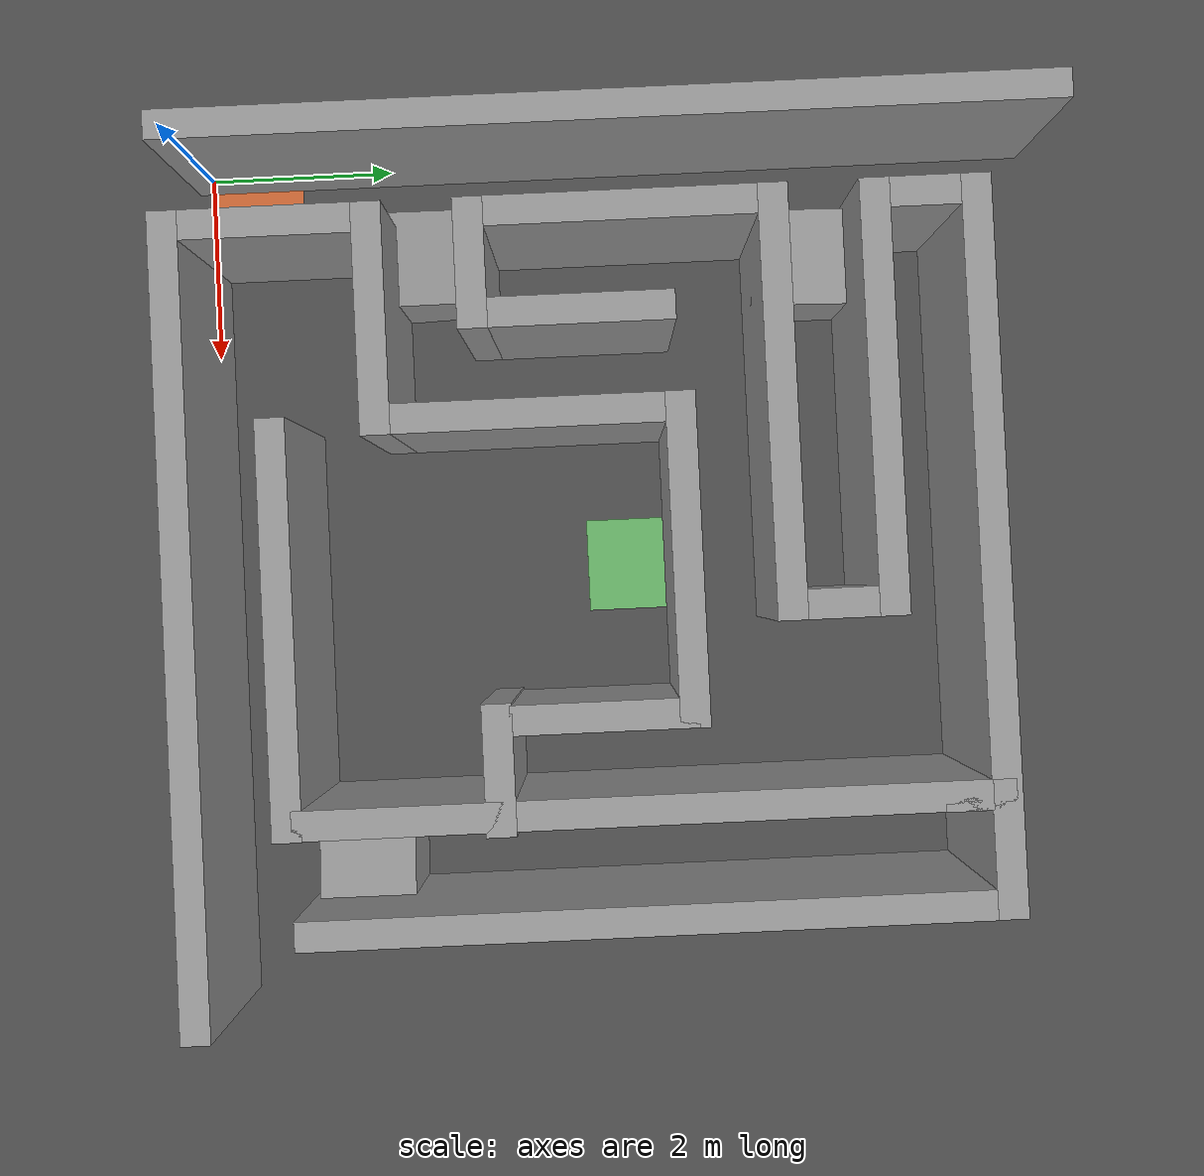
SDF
<sdf version="1.6">
 <world name="default">
  <light name="sun" type="directional">
   <pose>0 0 10 0 -0 0</pose>
   <diffuse>0.8 0.8 0.8 1</diffuse>
   <specular>0.1 0.1 0.1 1</specular>
   <attenuation>
    <range>1000</range>
    <constant>0.9</constant>
    <linear>0.01</linear>
    <quadratic>0.001</quadratic>
   </attenuation>
   <direction>-0.5 0.5 -1</direction>
  </light>
  <model name="ground_plane">
   <static>1</static>
   <link name="link">
    <collision name="collision">
     <geometry><plane><normal>0 0 1</normal><size>20 20</size></plane></geometry>
     <surface><friction><ode><mu>100</mu><mu2>50</mu2></ode></friction></surface>
    </collision>
    <visual name="visual">
     <cast_shadows>0</cast_shadows>
     <geometry><plane><normal>0 0 1</normal><size>20 20</size></plane></geometry>
     <material>
      <script>
       <uri>model://asphalt_plane/materials/scripts</uri>
       <uri>model://asphalt_plane/materials/textures</uri>
       <name>vrc/asphalt</name>
      </script>
     </material>
    </visual>
   </link>
  </model>
  <gravity>0 0 -9.8</gravity>
  <magnetic_field>6e-06 2.3e-05 -4.2e-05</magnetic_field>
  <atmosphere type="adiabatic"/>
  <physics name="default_physics" default="0" type="ode">
   <max_step_size>0.001</max_step_size>
   <real_time_factor>1</real_time_factor>
   <real_time_update_rate>1000</real_time_update_rate>
  </physics>
  <scene><ambient>0.4 0.4 0.4 1</ambient><background>0.7 0.7 0.7 1</background><shadows>1</shadows></scene>
  <spherical_coordinates>
   <surface_model>EARTH_WGS84</surface_model>
   <latitude_deg>0</latitude_deg>
   <longitude_deg>0</longitude_deg>
   <elevation>0</elevation>
   <heading_deg>0</heading_deg>
  </spherical_coordinates>
  <model name="box_goal">
   <static>1</static>
   <link name="link">
    <inertial>
     <mass>1</mass>
     <inertia>
      <ixx>0.166667</ixx>
      <ixy>0</ixy>
      <ixz>0</ixz>
      <iyy>0.166667</iyy>
      <iyz>0</iyz>
      <izz>0.166667</izz>
     </inertia>
    </inertial>
    <visual name="visual">
     <geometry><box><size>1 1 0.1</size></box></geometry>
     <material>
      <script><name>Gazebo/Grey</name><uri>file://media/materials/scripts/gazebo.material</uri></script>
      <ambient>0.3 1 0.3 1</ambient>
      <diffuse>0.4 0.7 0.4 1</diffuse>
      <specular>0.01 0.05 0.01 1</specular>
      <emissive>0 0.02 0 1</emissive>
      <shader type="vertex"><normal_map>__default__</normal_map></shader>
     </material>
    </visual>
    <collision name="collision">
     <geometry><box><size>1 1 0.1</size></box></geometry>
     <surface>
      <friction>
       <ode><mu>1</mu><mu2>1</mu2><fdir1>0 0 0</fdir1><slip1>0</slip1><slip2>0</slip2></ode>
       <torsional>
        <coefficient>1</coefficient>
        <patch_radius>0</patch_radius>
        <surface_radius>0</surface_radius>
        <use_patch_radius>1</use_patch_radius>
        <ode><slip>0</slip></ode>
       </torsional>
      </friction>
      <bounce><restitution_coefficient>0</restitution_coefficient><threshold>1e+06</threshold></bounce>
      <contact>
       <collide_without_contact>0</collide_without_contact>
       <collide_without_contact_bitmask>1</collide_without_contact_bitmask>
       <collide_bitmask>1</collide_bitmask>
       <ode>
        <soft_cfm>0</soft_cfm>
        <soft_erp>0.2</soft_erp>
        <kp>1e+13</kp>
        <kd>1</kd>
        <max_vel>0.01</max_vel>
        <min_depth>0</min_depth>
       </ode>
       <bullet>
        <split_impulse>1</split_impulse>
        <split_impulse_penetration_threshold>-0.01</split_impulse_penetration_threshold>
        <soft_cfm>0</soft_cfm>
        <soft_erp>0.2</soft_erp>
        <kp>1e+13</kp>
        <kd>1</kd>
       </bullet>
      </contact>
     </surface>
    </collision>
   </link>
   <static>0</static>
   <pose>4.5 4.5 -0.042 0 -0 0</pose>
  </model>
  <model name="box_init">
   <static>1</static>
   <link name="link">
    <inertial>
     <mass>1</mass>
     <inertia>
      <ixx>0.166667</ixx>
      <ixy>0</ixy>
      <ixz>0</ixz>
      <iyy>0.166667</iyy>
      <iyz>0</iyz>
      <izz>0.166667</izz>
     </inertia>
    </inertial>
    <visual name="visual">
     <geometry><box><size>1 1 0.1</size></box></geometry>
     <material>
      <script><name>Gazebo/Grey</name><uri>file://media/materials/scripts/gazebo.material</uri></script>
      <ambient>1 0.5 0.2 1</ambient>
      <diffuse>0.8 0.4 0.2 1</diffuse>
      <specular>0.05 0.02 0.01 1</specular>
      <emissive>0 0 0 1</emissive>
      <shader type="vertex"><normal_map>__default__</normal_map></shader>
     </material>
    </visual>
    <collision name="collision">
     <geometry><box><size>1 1 0.1</size></box></geometry>
     <surface>
      <friction>
       <ode><mu>1</mu><mu2>1</mu2><fdir1>0 0 0</fdir1><slip1>0</slip1><slip2>0</slip2></ode>
       <torsional>
        <coefficient>1</coefficient>
        <patch_radius>0</patch_radius>
        <surface_radius>0</surface_radius>
        <use_patch_radius>1</use_patch_radius>
        <ode><slip>0</slip></ode>
       </torsional>
      </friction>
      <bounce><restitution_coefficient>0</restitution_coefficient><threshold>1e+06</threshold></bounce>
      <contact>
       <collide_without_contact>0</collide_without_contact>
       <collide_without_contact_bitmask>1</collide_without_contact_bitmask>
       <collide_bitmask>1</collide_bitmask>
       <ode>
        <soft_cfm>0</soft_cfm>
        <soft_erp>0.2</soft_erp>
        <kp>1e+13</kp>
        <kd>1</kd>
        <max_vel>0.01</max_vel>
        <min_depth>0</min_depth>
       </ode>
       <bullet>
        <split_impulse>1</split_impulse>
        <split_impulse_penetration_threshold>-0.01</split_impulse_penetration_threshold>
        <soft_cfm>0</soft_cfm>
        <soft_erp>0.2</soft_erp>
        <kp>1e+13</kp>
        <kd>1</kd>
       </bullet>
      </contact>
     </surface>
    </collision>
   </link>
   <static>0</static>
   <allow_auto_disable>0</allow_auto_disable>
   <pose>0.5 0.5 -0.042 0 -0 0</pose>
  </model>
  <model name="greywall_9L4W">
   <link name="link">
    <pose>0 4.425 1 0 -0 1.57</pose>
    <inertial>
     <mass>20</mass>
     <inertia><ixx>1</ixx><ixy>0</ixy><ixz>0</ixz><iyy>1</iyy><iyz>0</iyz><izz>1</izz></inertia>
    </inertial>
    <visual name="ModelPreview_1::link::visual_1">
     <geometry><box><size>9.15 0.3 2</size></box></geometry>
     <material>
      <script>
       <uri>model://grey_wall/materials/scripts</uri>
       <uri>model://grey_wall/materials/textures</uri>
       <name>vrc/grey_wall</name>
      </script>
      <ambient>1 1 1 1</ambient>
      <diffuse>1 1 1 1</diffuse>
      <specular>0 0 0 1</specular>
      <emissive>0 0 0 1</emissive>
      <shader type="vertex"><normal_map>__default__</normal_map></shader>
     </material>
    </visual>
    <collision name="collision">
     <geometry><box><size>9.15 0.3 2</size></box></geometry>
     <surface>
      <friction>
       <ode><mu>1</mu><mu2>1</mu2><fdir1>0 0 0</fdir1><slip1>0</slip1><slip2>0</slip2></ode>
       <torsional>
        <coefficient>1</coefficient>
        <patch_radius>0</patch_radius>
        <surface_radius>0</surface_radius>
        <use_patch_radius>1</use_patch_radius>
        <ode><slip>0</slip></ode>
       </torsional>
      </friction>
      <bounce><restitution_coefficient>0</restitution_coefficient><threshold>1e+06</threshold></bounce>
      <contact>
       <collide_without_contact>0</collide_without_contact>
       <collide_without_contact_bitmask>1</collide_without_contact_bitmask>
       <collide_bitmask>1</collide_bitmask>
       <ode>
        <soft_cfm>0</soft_cfm>
        <soft_erp>0.2</soft_erp>
        <kp>1e+13</kp>
        <kd>1</kd>
        <max_vel>0.01</max_vel>
        <min_depth>0</min_depth>
       </ode>
       <bullet>
        <split_impulse>1</split_impulse>
        <split_impulse_penetration_threshold>-0.01</split_impulse_penetration_threshold>
        <soft_cfm>0</soft_cfm>
        <soft_erp>0.2</soft_erp>
        <kp>1e+13</kp>
        <kd>1</kd>
       </bullet>
      </contact>
     </surface>
    </collision>
   </link>
   <static>1</static>
  </model>
  <model name="greywall_8L36S">
   <link name="link">
    <pose>4.925 0 1 0 -0 0</pose>
    <inertial>
     <mass>20</mass>
     <inertia><ixx>1</ixx><ixy>0</ixy><ixz>0</ixz><iyy>1</iyy><iyz>0</iyz><izz>1</izz></inertia>
    </inertial>
    <visual name="ModelPreview_1::link::visual_1">
     <geometry><box><size>8.15 0.3 2</size></box></geometry>
     <material>
      <script>
       <uri>model://grey_wall/materials/scripts</uri>
       <uri>model://grey_wall/materials/textures</uri>
       <name>vrc/grey_wall</name>
      </script>
      <ambient>1 1 1 1</ambient>
      <diffuse>1 1 1 1</diffuse>
      <specular>0 0 0 1</specular>
      <emissive>0 0 0 1</emissive>
      <shader type="vertex"><normal_map>__default__</normal_map></shader>
     </material>
    </visual>
    <collision name="collision">
     <geometry><box><size>8.15 0.3 2</size></box></geometry>
     <surface>
      <friction>
       <ode><mu>1</mu><mu2>1</mu2><fdir1>0 0 0</fdir1><slip1>0</slip1><slip2>0</slip2></ode>
       <torsional>
        <coefficient>1</coefficient>
        <patch_radius>0</patch_radius>
        <surface_radius>0</surface_radius>
        <use_patch_radius>1</use_patch_radius>
        <ode><slip>0</slip></ode>
       </torsional>
      </friction>
      <bounce><restitution_coefficient>0</restitution_coefficient><threshold>1e+06</threshold></bounce>
      <contact>
       <collide_without_contact>0</collide_without_contact>
       <collide_without_contact_bitmask>1</collide_without_contact_bitmask>
       <collide_bitmask>1</collide_bitmask>
       <ode>
        <soft_cfm>0</soft_cfm>
        <soft_erp>0.2</soft_erp>
        <kp>1e+13</kp>
        <kd>1</kd>
        <max_vel>0.01</max_vel>
        <min_depth>0</min_depth>
       </ode>
       <bullet>
        <split_impulse>1</split_impulse>
        <split_impulse_penetration_threshold>-0.01</split_impulse_penetration_threshold>
        <soft_cfm>0</soft_cfm>
        <soft_erp>0.2</soft_erp>
        <kp>1e+13</kp>
        <kd>1</kd>
       </bullet>
      </contact>
     </surface>
    </collision>
   </link>
   <static>1</static>
  </model>
  <model name="greywall_7L66W">
   <link name="link">
    <pose>7 3.575 1 0 -0 1.57</pose>
    <inertial>
     <mass>20</mass>
     <inertia><ixx>1</ixx><ixy>0</ixy><ixz>0</ixz><iyy>1</iyy><iyz>0</iyz><izz>1</izz></inertia>
    </inertial>
    <visual name="ModelPreview_1::link::visual_1">
     <geometry><box><size>6.85 0.3 2</size></box></geometry>
     <material>
      <script>
       <uri>model://grey_wall/materials/scripts</uri>
       <uri>model://grey_wall/materials/textures</uri>
       <name>vrc/grey_wall</name>
      </script>
      <ambient>1 1 1 1</ambient>
      <diffuse>1 1 1 1</diffuse>
      <specular>0 0 0 1</specular>
      <emissive>0 0 0 1</emissive>
      <shader type="vertex"><normal_map>__default__</normal_map></shader>
     </material>
    </visual>
    <collision name="collision">
     <geometry><box><size>6.85 0.3 2</size></box></geometry>
     <surface>
      <friction>
       <ode><mu>1</mu><mu2>1</mu2><fdir1>0 0 0</fdir1><slip1>0</slip1><slip2>0</slip2></ode>
       <torsional>
        <coefficient>1</coefficient>
        <patch_radius>0</patch_radius>
        <surface_radius>0</surface_radius>
        <use_patch_radius>1</use_patch_radius>
        <ode><slip>0</slip></ode>
       </torsional>
      </friction>
      <bounce><restitution_coefficient>0</restitution_coefficient><threshold>1e+06</threshold></bounce>
      <contact>
       <collide_without_contact>0</collide_without_contact>
       <collide_without_contact_bitmask>1</collide_without_contact_bitmask>
       <collide_bitmask>1</collide_bitmask>
       <ode>
        <soft_cfm>0</soft_cfm>
        <soft_erp>0.2</soft_erp>
        <kp>1e+13</kp>
        <kd>1</kd>
        <max_vel>0.01</max_vel>
        <min_depth>0</min_depth>
       </ode>
       <bullet>
        <split_impulse>1</split_impulse>
        <split_impulse_penetration_threshold>-0.01</split_impulse_penetration_threshold>
        <soft_cfm>0</soft_cfm>
        <soft_erp>0.2</soft_erp>
        <kp>1e+13</kp>
        <kd>1</kd>
       </bullet>
      </contact>
     </surface>
    </collision>
   </link>
   <static>1</static>
   <pose>-0.07235 0.8652 0 0 -0 0</pose>
  </model>
  <model name="greywall_7L76W">
   <link name="link">
    <pose>8 4.425 1 0 -0 1.57</pose>
    <inertial>
     <mass>20</mass>
     <inertia><ixx>1</ixx><ixy>0</ixy><ixz>0</ixz><iyy>1</iyy><iyz>0</iyz><izz>1</izz></inertia>
    </inertial>
    <visual name="ModelPreview_1::link::visual_1">
     <geometry><box><size>6.85 0.3 2</size></box></geometry>
     <material>
      <script>
       <uri>model://grey_wall/materials/scripts</uri>
       <uri>model://grey_wall/materials/textures</uri>
       <name>vrc/grey_wall</name>
      </script>
      <ambient>1 1 1 1</ambient>
      <diffuse>1 1 1 1</diffuse>
      <specular>0 0 0 1</specular>
      <emissive>0 0 0 1</emissive>
      <shader type="vertex"><normal_map>__default__</normal_map></shader>
     </material>
    </visual>
    <collision name="collision">
     <geometry><box><size>6.85 0.3 2</size></box></geometry>
     <surface>
      <friction>
       <ode><mu>1</mu><mu2>1</mu2><fdir1>0 0 0</fdir1><slip1>0</slip1><slip2>0</slip2></ode>
       <torsional>
        <coefficient>1</coefficient>
        <patch_radius>0</patch_radius>
        <surface_radius>0</surface_radius>
        <use_patch_radius>1</use_patch_radius>
        <ode><slip>0</slip></ode>
       </torsional>
      </friction>
      <bounce><restitution_coefficient>0</restitution_coefficient><threshold>1e+06</threshold></bounce>
      <contact>
       <collide_without_contact>0</collide_without_contact>
       <collide_without_contact_bitmask>1</collide_without_contact_bitmask>
       <collide_bitmask>1</collide_bitmask>
       <ode>
        <soft_cfm>0</soft_cfm>
        <soft_erp>0.2</soft_erp>
        <kp>1e+13</kp>
        <kd>1</kd>
        <max_vel>0.01</max_vel>
        <min_depth>0</min_depth>
       </ode>
       <bullet>
        <split_impulse>1</split_impulse>
        <split_impulse_penetration_threshold>-0.01</split_impulse_penetration_threshold>
        <soft_cfm>0</soft_cfm>
        <soft_erp>0.2</soft_erp>
        <kp>1e+13</kp>
        <kd>1</kd>
       </bullet>
      </contact>
     </surface>
    </collision>
   </link>
   <static>1</static>
  </model>
  <model name="greywall_7L43N">
   <link name="link">
    <pose>4.5 8 1 0 -0 0</pose>
    <inertial>
     <mass>20</mass>
     <inertia><ixx>1</ixx><ixy>0</ixy><ixz>0</ixz><iyy>1</iyy><iyz>0</iyz><izz>1</izz></inertia>
    </inertial>
    <visual name="ModelPreview_1::link::visual_1">
     <geometry><box><size>7.3 0.3 2</size></box></geometry>
     <material>
      <script>
       <uri>model://grey_wall/materials/scripts</uri>
       <uri>model://grey_wall/materials/textures</uri>
       <name>vrc/grey_wall</name>
      </script>
      <ambient>1 1 1 1</ambient>
      <diffuse>1 1 1 1</diffuse>
      <specular>0 0 0 1</specular>
      <emissive>0 0 0 1</emissive>
      <shader type="vertex"><normal_map>__default__</normal_map></shader>
     </material>
    </visual>
    <collision name="collision">
     <geometry><box><size>7.3 0.3 2</size></box></geometry>
     <surface>
      <friction>
       <ode><mu>1</mu><mu2>1</mu2><fdir1>0 0 0</fdir1><slip1>0</slip1><slip2>0</slip2></ode>
       <torsional>
        <coefficient>1</coefficient>
        <patch_radius>0</patch_radius>
        <surface_radius>0</surface_radius>
        <use_patch_radius>1</use_patch_radius>
        <ode><slip>0</slip></ode>
       </torsional>
      </friction>
      <bounce><restitution_coefficient>0</restitution_coefficient><threshold>1e+06</threshold></bounce>
      <contact>
       <collide_without_contact>0</collide_without_contact>
       <collide_without_contact_bitmask>1</collide_without_contact_bitmask>
       <collide_bitmask>1</collide_bitmask>
       <ode>
        <soft_cfm>0</soft_cfm>
        <soft_erp>0.2</soft_erp>
        <kp>1e+13</kp>
        <kd>1</kd>
        <max_vel>0.01</max_vel>
        <min_depth>0</min_depth>
       </ode>
       <bullet>
        <split_impulse>1</split_impulse>
        <split_impulse_penetration_threshold>-0.01</split_impulse_penetration_threshold>
        <soft_cfm>0</soft_cfm>
        <soft_erp>0.2</soft_erp>
        <kp>1e+13</kp>
        <kd>1</kd>
       </bullet>
      </contact>
     </surface>
    </collision>
   </link>
   <static>1</static>
  </model>
  <model name="greywall_1L16W">
   <link name="link">
    <pose>1 7.5 1 0 -0 1.57</pose>
    <inertial>
     <mass>20</mass>
     <inertia><ixx>1</ixx><ixy>0</ixy><ixz>0</ixz><iyy>1</iyy><iyz>0</iyz><izz>1</izz></inertia>
    </inertial>
    <visual name="ModelPreview_1::link::visual_1">
     <geometry><box><size>0.7 0.3 2</size></box></geometry>
     <material>
      <script>
       <uri>model://grey_wall/materials/scripts</uri>
       <uri>model://grey_wall/materials/textures</uri>
       <name>vrc/grey_wall</name>
      </script>
      <ambient>1 1 1 1</ambient>
      <diffuse>1 1 1 1</diffuse>
      <specular>0 0 0 1</specular>
      <emissive>0 0 0 1</emissive>
      <shader type="vertex"><normal_map>__default__</normal_map></shader>
     </material>
    </visual>
    <collision name="collision">
     <geometry><box><size>0.7 0.3 2</size></box></geometry>
     <surface>
      <friction>
       <ode><mu>1</mu><mu2>1</mu2><fdir1>0 0 0</fdir1><slip1>0</slip1><slip2>0</slip2></ode>
       <torsional>
        <coefficient>1</coefficient>
        <patch_radius>0</patch_radius>
        <surface_radius>0</surface_radius>
        <use_patch_radius>1</use_patch_radius>
        <ode><slip>0</slip></ode>
       </torsional>
      </friction>
      <bounce><restitution_coefficient>0</restitution_coefficient><threshold>1e+06</threshold></bounce>
      <contact>
       <collide_without_contact>0</collide_without_contact>
       <collide_without_contact_bitmask>1</collide_without_contact_bitmask>
       <collide_bitmask>1</collide_bitmask>
       <ode>
        <soft_cfm>0</soft_cfm>
        <soft_erp>0.2</soft_erp>
        <kp>1e+13</kp>
        <kd>1</kd>
        <max_vel>0.01</max_vel>
        <min_depth>0</min_depth>
       </ode>
       <bullet>
        <split_impulse>1</split_impulse>
        <split_impulse_penetration_threshold>-0.01</split_impulse_penetration_threshold>
        <soft_cfm>0</soft_cfm>
        <soft_erp>0.2</soft_erp>
        <kp>1e+13</kp>
        <kd>1</kd>
       </bullet>
      </contact>
     </surface>
    </collision>
   </link>
   <static>1</static>
  </model>
  <model name="greywall_1L51W">
   <link name="link">
    <pose>5 6.5 1 0 -0 1.57</pose>
    <inertial>
     <mass>20</mass>
     <inertia><ixx>1</ixx><ixy>0</ixy><ixz>0</ixz><iyy>1</iyy><iyz>0</iyz><izz>1</izz></inertia>
    </inertial>
    <visual name="ModelPreview_1::link::visual_1">
     <geometry><box><size>0.7 0.3 2</size></box></geometry>
     <material>
      <script>
       <uri>model://grey_wall/materials/scripts</uri>
       <uri>model://grey_wall/materials/textures</uri>
       <name>vrc/grey_wall</name>
      </script>
      <ambient>1 1 1 1</ambient>
      <diffuse>1 1 1 1</diffuse>
      <specular>0 0 0 1</specular>
      <emissive>0 0 0 1</emissive>
      <shader type="vertex"><normal_map>__default__</normal_map></shader>
     </material>
    </visual>
    <collision name="collision">
     <geometry><box><size>0.7 0.3 2</size></box></geometry>
     <surface>
      <friction>
       <ode><mu>1</mu><mu2>1</mu2><fdir1>0 0 0</fdir1><slip1>0</slip1><slip2>0</slip2></ode>
       <torsional>
        <coefficient>1</coefficient>
        <patch_radius>0</patch_radius>
        <surface_radius>0</surface_radius>
        <use_patch_radius>1</use_patch_radius>
        <ode><slip>0</slip></ode>
       </torsional>
      </friction>
      <bounce><restitution_coefficient>0</restitution_coefficient><threshold>1e+06</threshold></bounce>
      <contact>
       <collide_without_contact>0</collide_without_contact>
       <collide_without_contact_bitmask>1</collide_without_contact_bitmask>
       <collide_bitmask>1</collide_bitmask>
       <ode>
        <soft_cfm>0</soft_cfm>
        <soft_erp>0.2</soft_erp>
        <kp>1e+13</kp>
        <kd>1</kd>
        <max_vel>0.01</max_vel>
        <min_depth>0</min_depth>
       </ode>
       <bullet>
        <split_impulse>1</split_impulse>
        <split_impulse_penetration_threshold>-0.01</split_impulse_penetration_threshold>
        <soft_cfm>0</soft_cfm>
        <soft_erp>0.2</soft_erp>
        <kp>1e+13</kp>
        <kd>1</kd>
       </bullet>
      </contact>
     </surface>
    </collision>
   </link>
   <static>1</static>
  </model>
  <model name="greywall_1L12S">
   <link name="link">
    <pose>1.5 3 1 0 -0 0</pose>
    <inertial>
     <mass>20</mass>
     <inertia><ixx>1</ixx><ixy>0</ixy><ixz>0</ixz><iyy>1</iyy><iyz>0</iyz><izz>1</izz></inertia>
    </inertial>
    <visual name="ModelPreview_1::link::visual_1">
     <geometry><box><size>1.3 0.3 2</size></box></geometry>
     <material>
      <script>
       <uri>model://grey_wall/materials/scripts</uri>
       <uri>model://grey_wall/materials/textures</uri>
       <name>vrc/grey_wall</name>
      </script>
      <ambient>1 1 1 1</ambient>
      <diffuse>1 1 1 1</diffuse>
      <specular>0 0 0 1</specular>
      <emissive>0 0 0 1</emissive>
      <shader type="vertex"><normal_map>__default__</normal_map></shader>
     </material>
    </visual>
    <collision name="collision">
     <geometry><box><size>1.3 0.3 2</size></box></geometry>
     <surface>
      <friction>
       <ode><mu>1</mu><mu2>1</mu2><fdir1>0 0 0</fdir1><slip1>0</slip1><slip2>0</slip2></ode>
       <torsional>
        <coefficient>1</coefficient>
        <patch_radius>0</patch_radius>
        <surface_radius>0</surface_radius>
        <use_patch_radius>1</use_patch_radius>
        <ode><slip>0</slip></ode>
       </torsional>
      </friction>
      <bounce><restitution_coefficient>0</restitution_coefficient><threshold>1e+06</threshold></bounce>
      <contact>
       <collide_without_contact>0</collide_without_contact>
       <collide_without_contact_bitmask>1</collide_without_contact_bitmask>
       <collide_bitmask>1</collide_bitmask>
       <ode>
        <soft_cfm>0</soft_cfm>
        <soft_erp>0.2</soft_erp>
        <kp>1e+13</kp>
        <kd>1</kd>
        <max_vel>0.01</max_vel>
        <min_depth>0</min_depth>
       </ode>
       <bullet>
        <split_impulse>1</split_impulse>
        <split_impulse_penetration_threshold>-0.01</split_impulse_penetration_threshold>
        <soft_cfm>0</soft_cfm>
        <soft_erp>0.2</soft_erp>
        <kp>1e+13</kp>
        <kd>1</kd>
       </bullet>
      </contact>
     </surface>
    </collision>
   </link>
   <static>1</static>
  </model>
  <model name="greywall_2L9W">
   <link name="link">
    <pose>1 1 1 0 -0 1.57</pose>
    <inertial>
     <mass>20</mass>
     <inertia><ixx>1</ixx><ixy>0</ixy><ixz>0</ixz><iyy>1</iyy><iyz>0</iyz><izz>1</izz></inertia>
    </inertial>
    <visual name="ModelPreview_1::link::visual_1">
     <geometry><box><size>1.7 0.3 2</size></box></geometry>
     <material>
      <script>
       <uri>model://grey_wall/materials/scripts</uri>
       <uri>model://grey_wall/materials/textures</uri>
       <name>vrc/grey_wall</name>
      </script>
      <ambient>1 1 1 1</ambient>
      <diffuse>1 1 1 1</diffuse>
      <specular>0 0 0 1</specular>
      <emissive>0 0 0 1</emissive>
      <shader type="vertex"><normal_map>__default__</normal_map></shader>
     </material>
    </visual>
    <collision name="collision">
     <geometry><box><size>1.7 0.3 2</size></box></geometry>
     <surface>
      <friction>
       <ode><mu>1</mu><mu2>1</mu2><fdir1>0 0 0</fdir1><slip1>0</slip1><slip2>0</slip2></ode>
       <torsional>
        <coefficient>1</coefficient>
        <patch_radius>0</patch_radius>
        <surface_radius>0</surface_radius>
        <use_patch_radius>1</use_patch_radius>
        <ode><slip>0</slip></ode>
       </torsional>
      </friction>
      <bounce><restitution_coefficient>0</restitution_coefficient><threshold>1e+06</threshold></bounce>
      <contact>
       <collide_without_contact>0</collide_without_contact>
       <collide_without_contact_bitmask>1</collide_without_contact_bitmask>
       <collide_bitmask>1</collide_bitmask>
       <ode>
        <soft_cfm>0</soft_cfm>
        <soft_erp>0.2</soft_erp>
        <kp>1e+13</kp>
        <kd>1</kd>
        <max_vel>0.01</max_vel>
        <min_depth>0</min_depth>
       </ode>
       <bullet>
        <split_impulse>1</split_impulse>
        <split_impulse_penetration_threshold>-0.01</split_impulse_penetration_threshold>
        <soft_cfm>0</soft_cfm>
        <soft_erp>0.2</soft_erp>
        <kp>1e+13</kp>
        <kd>1</kd>
       </bullet>
      </contact>
     </surface>
    </collision>
   </link>
   <static>1</static>
  </model>
  <model name="greywall_4L34S">
   <link name="link">
    <pose>3 7 1 0 -0 0</pose>
    <inertial>
     <mass>20</mass>
     <inertia><ixx>1</ixx><ixy>0</ixy><ixz>0</ixz><iyy>1</iyy><iyz>0</iyz><izz>1</izz></inertia>
    </inertial>
    <visual name="ModelPreview_1::link::visual_1">
     <geometry><box><size>4.3 0.3 2</size></box></geometry>
     <material>
      <script>
       <uri>model://grey_wall/materials/scripts</uri>
       <uri>model://grey_wall/materials/textures</uri>
       <name>vrc/grey_wall</name>
      </script>
      <ambient>1 1 1 1</ambient>
      <diffuse>1 1 1 1</diffuse>
      <specular>0 0 0 1</specular>
      <emissive>0 0 0 1</emissive>
      <shader type="vertex"><normal_map>__default__</normal_map></shader>
     </material>
    </visual>
    <collision name="collision">
     <geometry><box><size>4.3 0.3 2</size></box></geometry>
     <surface>
      <friction>
       <ode><mu>1</mu><mu2>1</mu2><fdir1>0 0 0</fdir1><slip1>0</slip1><slip2>0</slip2></ode>
       <torsional>
        <coefficient>1</coefficient>
        <patch_radius>0</patch_radius>
        <surface_radius>0</surface_radius>
        <use_patch_radius>1</use_patch_radius>
        <ode><slip>0</slip></ode>
       </torsional>
      </friction>
      <bounce><restitution_coefficient>0</restitution_coefficient><threshold>1e+06</threshold></bounce>
      <contact>
       <collide_without_contact>0</collide_without_contact>
       <collide_without_contact_bitmask>1</collide_without_contact_bitmask>
       <collide_bitmask>1</collide_bitmask>
       <ode>
        <soft_cfm>0</soft_cfm>
        <soft_erp>0.2</soft_erp>
        <kp>1e+13</kp>
        <kd>1</kd>
        <max_vel>0.01</max_vel>
        <min_depth>0</min_depth>
       </ode>
       <bullet>
        <split_impulse>1</split_impulse>
        <split_impulse_penetration_threshold>-0.01</split_impulse_penetration_threshold>
        <soft_cfm>0</soft_cfm>
        <soft_erp>0.2</soft_erp>
        <kp>1e+13</kp>
        <kd>1</kd>
       </bullet>
      </contact>
     </surface>
    </collision>
   </link>
   <static>1</static>
  </model>
  <model name="greywall_4L33S">
   <link name="link">
    <pose>3 6 1 0 -0 0</pose>
    <inertial>
     <mass>20</mass>
     <inertia><ixx>1</ixx><ixy>0</ixy><ixz>0</ixz><iyy>1</iyy><iyz>0</iyz><izz>1</izz></inertia>
    </inertial>
    <visual name="ModelPreview_1::link::visual_1">
     <geometry><box><size>4.3 0.3 2</size></box></geometry>
     <material>
      <script>
       <uri>model://grey_wall/materials/scripts</uri>
       <uri>model://grey_wall/materials/textures</uri>
       <name>vrc/grey_wall</name>
      </script>
      <ambient>1 1 1 1</ambient>
      <diffuse>1 1 1 1</diffuse>
      <specular>0 0 0 1</specular>
      <emissive>0 0 0 1</emissive>
      <shader type="vertex"><normal_map>__default__</normal_map></shader>
     </material>
    </visual>
    <collision name="collision">
     <geometry><box><size>4.3 0.3 2</size></box></geometry>
     <surface>
      <friction>
       <ode><mu>1</mu><mu2>1</mu2><fdir1>0 0 0</fdir1><slip1>0</slip1><slip2>0</slip2></ode>
       <torsional>
        <coefficient>1</coefficient>
        <patch_radius>0</patch_radius>
        <surface_radius>0</surface_radius>
        <use_patch_radius>1</use_patch_radius>
        <ode><slip>0</slip></ode>
       </torsional>
      </friction>
      <bounce><restitution_coefficient>0</restitution_coefficient><threshold>1e+06</threshold></bounce>
      <contact>
       <collide_without_contact>0</collide_without_contact>
       <collide_without_contact_bitmask>1</collide_without_contact_bitmask>
       <collide_bitmask>1</collide_bitmask>
       <ode>
        <soft_cfm>0</soft_cfm>
        <soft_erp>0.2</soft_erp>
        <kp>1e+13</kp>
        <kd>1</kd>
        <max_vel>0.01</max_vel>
        <min_depth>0</min_depth>
       </ode>
       <bullet>
        <split_impulse>1</split_impulse>
        <split_impulse_penetration_threshold>-0.01</split_impulse_penetration_threshold>
        <soft_cfm>0</soft_cfm>
        <soft_erp>0.2</soft_erp>
        <kp>1e+13</kp>
        <kd>1</kd>
       </bullet>
      </contact>
     </surface>
    </collision>
   </link>
   <static>1</static>
  </model>
  <model name="greywall_2L12E">
   <link name="link">
    <pose>2 4.075 1 0 -0 1.57</pose>
    <inertial>
     <mass>20</mass>
     <inertia><ixx>1</ixx><ixy>0</ixy><ixz>0</ixz><iyy>1</iyy><iyz>0</iyz><izz>1</izz></inertia>
    </inertial>
    <visual name="ModelPreview_1::link::visual_1">
     <geometry><box><size>1.85 0.3 2</size></box></geometry>
     <material>
      <script>
       <uri>model://grey_wall/materials/scripts</uri>
       <uri>model://grey_wall/materials/textures</uri>
       <name>vrc/grey_wall</name>
      </script>
      <ambient>1 1 1 1</ambient>
      <diffuse>1 1 1 1</diffuse>
      <specular>0 0 0 1</specular>
      <emissive>0 0 0 1</emissive>
      <shader type="vertex"><normal_map>__default__</normal_map></shader>
     </material>
    </visual>
    <collision name="collision">
     <geometry><box><size>1.85 0.3 2</size></box></geometry>
     <surface>
      <friction>
       <ode><mu>1</mu><mu2>1</mu2><fdir1>0 0 0</fdir1><slip1>0</slip1><slip2>0</slip2></ode>
       <torsional>
        <coefficient>1</coefficient>
        <patch_radius>0</patch_radius>
        <surface_radius>0</surface_radius>
        <use_patch_radius>1</use_patch_radius>
        <ode><slip>0</slip></ode>
       </torsional>
      </friction>
      <bounce><restitution_coefficient>0</restitution_coefficient><threshold>1e+06</threshold></bounce>
      <contact>
       <collide_without_contact>0</collide_without_contact>
       <collide_without_contact_bitmask>1</collide_without_contact_bitmask>
       <collide_bitmask>1</collide_bitmask>
       <ode>
        <soft_cfm>0</soft_cfm>
        <soft_erp>0.2</soft_erp>
        <kp>1e+13</kp>
        <kd>1</kd>
        <max_vel>0.01</max_vel>
        <min_depth>0</min_depth>
       </ode>
       <bullet>
        <split_impulse>1</split_impulse>
        <split_impulse_penetration_threshold>-0.01</split_impulse_penetration_threshold>
        <soft_cfm>0</soft_cfm>
        <soft_erp>0.2</soft_erp>
        <kp>1e+13</kp>
        <kd>1</kd>
       </bullet>
      </contact>
     </surface>
    </collision>
   </link>
   <static>1</static>
  </model>
  <model name="greywall_3L12W">
   <link name="link">
    <pose>1 4.5 1 0 -0 1.57</pose>
    <inertial>
     <mass>20</mass>
     <inertia><ixx>1</ixx><ixy>0</ixy><ixz>0</ixz><iyy>1</iyy><iyz>0</iyz><izz>1</izz></inertia>
    </inertial>
    <visual name="ModelPreview_1::link::visual_1">
     <geometry><box><size>2.7 0.3 2</size></box></geometry>
     <material>
      <script>
       <uri>model://grey_wall/materials/scripts</uri>
       <uri>model://grey_wall/materials/textures</uri>
       <name>vrc/grey_wall</name>
      </script>
      <ambient>1 1 1 1</ambient>
      <diffuse>1 1 1 1</diffuse>
      <specular>0 0 0 1</specular>
      <emissive>0 0 0 1</emissive>
      <shader type="vertex"><normal_map>__default__</normal_map></shader>
     </material>
    </visual>
    <collision name="collision">
     <geometry><box><size>2.7 0.3 2</size></box></geometry>
     <surface>
      <friction>
       <ode><mu>1</mu><mu2>1</mu2><fdir1>0 0 0</fdir1><slip1>0</slip1><slip2>0</slip2></ode>
       <torsional>
        <coefficient>1</coefficient>
        <patch_radius>0</patch_radius>
        <surface_radius>0</surface_radius>
        <use_patch_radius>1</use_patch_radius>
        <ode><slip>0</slip></ode>
       </torsional>
      </friction>
      <bounce><restitution_coefficient>0</restitution_coefficient><threshold>1e+06</threshold></bounce>
      <contact>
       <collide_without_contact>0</collide_without_contact>
       <collide_without_contact_bitmask>1</collide_without_contact_bitmask>
       <collide_bitmask>1</collide_bitmask>
       <ode>
        <soft_cfm>0</soft_cfm>
        <soft_erp>0.2</soft_erp>
        <kp>1e+13</kp>
        <kd>1</kd>
        <max_vel>0.01</max_vel>
        <min_depth>0</min_depth>
       </ode>
       <bullet>
        <split_impulse>1</split_impulse>
        <split_impulse_penetration_threshold>-0.01</split_impulse_penetration_threshold>
        <soft_cfm>0</soft_cfm>
        <soft_erp>0.2</soft_erp>
        <kp>1e+13</kp>
        <kd>1</kd>
       </bullet>
      </contact>
     </surface>
    </collision>
   </link>
   <static>1</static>
  </model>
  <model name="greywall_2L10N">
   <link name="link">
    <pose>2 2 1 0 -0 0</pose>
    <inertial>
     <mass>20</mass>
     <inertia><ixx>1</ixx><ixy>0</ixy><ixz>0</ixz><iyy>1</iyy><iyz>0</iyz><izz>1</izz></inertia>
    </inertial>
    <visual name="ModelPreview_1::link::visual_1">
     <geometry><box><size>2.3 0.3 2</size></box></geometry>
     <material>
      <script>
       <uri>model://grey_wall/materials/scripts</uri>
       <uri>model://grey_wall/materials/textures</uri>
       <name>vrc/grey_wall</name>
      </script>
      <ambient>1 1 1 1</ambient>
      <diffuse>1 1 1 1</diffuse>
      <specular>0 0 0 1</specular>
      <emissive>0 0 0 1</emissive>
      <shader type="vertex"><normal_map>__default__</normal_map></shader>
     </material>
    </visual>
    <collision name="collision">
     <geometry><box><size>2.3 0.3 2</size></box></geometry>
     <surface>
      <friction>
       <ode><mu>1</mu><mu2>1</mu2><fdir1>0 0 0</fdir1><slip1>0</slip1><slip2>0</slip2></ode>
       <torsional>
        <coefficient>1</coefficient>
        <patch_radius>0</patch_radius>
        <surface_radius>0</surface_radius>
        <use_patch_radius>1</use_patch_radius>
        <ode><slip>0</slip></ode>
       </torsional>
      </friction>
      <bounce><restitution_coefficient>0</restitution_coefficient><threshold>1e+06</threshold></bounce>
      <contact>
       <collide_without_contact>0</collide_without_contact>
       <collide_without_contact_bitmask>1</collide_without_contact_bitmask>
       <collide_bitmask>1</collide_bitmask>
       <ode>
        <soft_cfm>0</soft_cfm>
        <soft_erp>0.2</soft_erp>
        <kp>1e+13</kp>
        <kd>1</kd>
        <max_vel>0.01</max_vel>
        <min_depth>0</min_depth>
       </ode>
       <bullet>
        <split_impulse>1</split_impulse>
        <split_impulse_penetration_threshold>-0.01</split_impulse_penetration_threshold>
        <soft_cfm>0</soft_cfm>
        <soft_erp>0.2</soft_erp>
        <kp>1e+13</kp>
        <kd>1</kd>
       </bullet>
      </contact>
     </surface>
    </collision>
   </link>
   <static>1</static>
  </model>
  <model name="greywall_3L40N">
   <link name="link">
    <pose>4.5 5 1 0 -0 0</pose>
    <inertial>
     <mass>20</mass>
     <inertia><ixx>1</ixx><ixy>0</ixy><ixz>0</ixz><iyy>1</iyy><iyz>0</iyz><izz>1</izz></inertia>
    </inertial>
    <visual name="ModelPreview_1::link::visual_1">
     <geometry><box><size>3.3 0.3 2</size></box></geometry>
     <material>
      <script>
       <uri>model://grey_wall/materials/scripts</uri>
       <uri>model://grey_wall/materials/textures</uri>
       <name>vrc/grey_wall</name>
      </script>
      <ambient>1 1 1 1</ambient>
      <diffuse>1 1 1 1</diffuse>
      <specular>0 0 0 1</specular>
      <emissive>0 0 0 1</emissive>
      <shader type="vertex"><normal_map>__default__</normal_map></shader>
     </material>
    </visual>
    <collision name="collision">
     <geometry><box><size>3.3 0.3 2</size></box></geometry>
     <surface>
      <friction>
       <ode><mu>1</mu><mu2>1</mu2><fdir1>0 0 0</fdir1><slip1>0</slip1><slip2>0</slip2></ode>
       <torsional>
        <coefficient>1</coefficient>
        <patch_radius>0</patch_radius>
        <surface_radius>0</surface_radius>
        <use_patch_radius>1</use_patch_radius>
        <ode><slip>0</slip></ode>
       </torsional>
      </friction>
      <bounce><restitution_coefficient>0</restitution_coefficient><threshold>1e+06</threshold></bounce>
      <contact>
       <collide_without_contact>0</collide_without_contact>
       <collide_without_contact_bitmask>1</collide_without_contact_bitmask>
       <collide_bitmask>1</collide_bitmask>
       <ode>
        <soft_cfm>0</soft_cfm>
        <soft_erp>0.2</soft_erp>
        <kp>1e+13</kp>
        <kd>1</kd>
        <max_vel>0.01</max_vel>
        <min_depth>0</min_depth>
       </ode>
       <bullet>
        <split_impulse>1</split_impulse>
        <split_impulse_penetration_threshold>-0.01</split_impulse_penetration_threshold>
        <soft_cfm>0</soft_cfm>
        <soft_erp>0.2</soft_erp>
        <kp>1e+13</kp>
        <kd>1</kd>
       </bullet>
      </contact>
     </surface>
    </collision>
   </link>
   <static>1</static>
  </model>
  <model name="greywall_4L19S">
   <link name="link">
    <pose>4.075 1 1 0 -0 0</pose>
    <inertial>
     <mass>20</mass>
     <inertia><ixx>1</ixx><ixy>0</ixy><ixz>0</ixz><iyy>1</iyy><iyz>0</iyz><izz>1</izz></inertia>
    </inertial>
    <visual name="ModelPreview_1::link::visual_1">
     <geometry><box><size>4.15 0.3 2</size></box></geometry>
     <material>
      <script>
       <uri>model://grey_wall/materials/scripts</uri>
       <uri>model://grey_wall/materials/textures</uri>
       <name>vrc/grey_wall</name>
      </script>
      <ambient>1 1 1 1</ambient>
      <diffuse>1 1 1 1</diffuse>
      <specular>0 0 0 1</specular>
      <emissive>0 0 0 1</emissive>
      <shader type="vertex"><normal_map>__default__</normal_map></shader>
     </material>
    </visual>
    <collision name="collision">
     <geometry><box><size>4.15 0.3 2</size></box></geometry>
     <surface>
      <friction>
       <ode><mu>1</mu><mu2>1</mu2><fdir1>0 0 0</fdir1><slip1>0</slip1><slip2>0</slip2></ode>
       <torsional>
        <coefficient>1</coefficient>
        <patch_radius>0</patch_radius>
        <surface_radius>0</surface_radius>
        <use_patch_radius>1</use_patch_radius>
        <ode><slip>0</slip></ode>
       </torsional>
      </friction>
      <bounce><restitution_coefficient>0</restitution_coefficient><threshold>1e+06</threshold></bounce>
      <contact>
       <collide_without_contact>0</collide_without_contact>
       <collide_without_contact_bitmask>1</collide_without_contact_bitmask>
       <collide_bitmask>1</collide_bitmask>
       <ode>
        <soft_cfm>0</soft_cfm>
        <soft_erp>0.2</soft_erp>
        <kp>1e+13</kp>
        <kd>1</kd>
        <max_vel>0.01</max_vel>
        <min_depth>0</min_depth>
       </ode>
       <bullet>
        <split_impulse>1</split_impulse>
        <split_impulse_penetration_threshold>-0.01</split_impulse_penetration_threshold>
        <soft_cfm>0</soft_cfm>
        <soft_erp>0.2</soft_erp>
        <kp>1e+13</kp>
        <kd>1</kd>
       </bullet>
      </contact>
     </surface>
    </collision>
   </link>
   <static>1</static>
   <pose>0.9311 -0.029783 0 0 -0 0</pose>
  </model>
  <model name="greywall_3L30W">
   <link name="link">
    <pose>3 3.5 1 0 -0 1.57</pose>
    <inertial>
     <mass>20</mass>
     <inertia><ixx>1</ixx><ixy>0</ixy><ixz>0</ixz><iyy>1</iyy><iyz>0</iyz><izz>1</izz></inertia>
    </inertial>
    <visual name="ModelPreview_1::link::visual_1">
     <geometry><box><size>2.7 0.3 2</size></box></geometry>
     <material>
      <script>
       <uri>model://grey_wall/materials/scripts</uri>
       <uri>model://grey_wall/materials/textures</uri>
       <name>vrc/grey_wall</name>
      </script>
      <ambient>1 1 1 1</ambient>
      <diffuse>1 1 1 1</diffuse>
      <specular>0 0 0 1</specular>
      <emissive>0 0 0 1</emissive>
      <shader type="vertex"><normal_map>__default__</normal_map></shader>
     </material>
    </visual>
    <collision name="collision">
     <geometry><box><size>2.7 0.3 2</size></box></geometry>
     <surface>
      <friction>
       <ode><mu>1</mu><mu2>1</mu2><fdir1>0 0 0</fdir1><slip1>0</slip1><slip2>0</slip2></ode>
       <torsional>
        <coefficient>1</coefficient>
        <patch_radius>0</patch_radius>
        <surface_radius>0</surface_radius>
        <use_patch_radius>1</use_patch_radius>
        <ode><slip>0</slip></ode>
       </torsional>
      </friction>
      <bounce><restitution_coefficient>0</restitution_coefficient><threshold>1e+06</threshold></bounce>
      <contact>
       <collide_without_contact>0</collide_without_contact>
       <collide_without_contact_bitmask>1</collide_without_contact_bitmask>
       <collide_bitmask>1</collide_bitmask>
       <ode>
        <soft_cfm>0</soft_cfm>
        <soft_erp>0.2</soft_erp>
        <kp>1e+13</kp>
        <kd>1</kd>
        <max_vel>0.01</max_vel>
        <min_depth>0</min_depth>
       </ode>
       <bullet>
        <split_impulse>1</split_impulse>
        <split_impulse_penetration_threshold>-0.01</split_impulse_penetration_threshold>
        <soft_cfm>0</soft_cfm>
        <soft_erp>0.2</soft_erp>
        <kp>1e+13</kp>
        <kd>1</kd>
       </bullet>
      </contact>
     </surface>
    </collision>
   </link>
   <static>1</static>
  </model>
  <model name="greywall_2L12E_clone">
   <link name="link">
    <pose>2 4.075 1 0 -0 1.57</pose>
    <inertial>
     <mass>20</mass>
     <inertia><ixx>1</ixx><ixy>0</ixy><ixz>0</ixz><iyy>1</iyy><iyz>0</iyz><izz>1</izz></inertia>
    </inertial>
    <visual name="ModelPreview_1::link::visual_1">
     <geometry><box><size>1.85 0.3 2</size></box></geometry>
     <material>
      <script>
       <uri>model://grey_wall/materials/scripts</uri>
       <uri>model://grey_wall/materials/textures</uri>
       <name>vrc/grey_wall</name>
      </script>
      <ambient>1 1 1 1</ambient>
      <diffuse>1 1 1 1</diffuse>
      <specular>0 0 0 1</specular>
      <emissive>0 0 0 1</emissive>
      <shader type="vertex"><normal_map>__default__</normal_map></shader>
     </material>
    </visual>
    <collision name="collision">
     <geometry><box><size>1.85 0.3 2</size></box></geometry>
     <surface>
      <friction>
       <ode><mu>1</mu><mu2>1</mu2><fdir1>0 0 0</fdir1><slip1>0</slip1><slip2>0</slip2></ode>
       <torsional>
        <coefficient>1</coefficient>
        <patch_radius>0</patch_radius>
        <surface_radius>0</surface_radius>
        <use_patch_radius>1</use_patch_radius>
        <ode><slip>0</slip></ode>
       </torsional>
      </friction>
      <bounce><restitution_coefficient>0</restitution_coefficient><threshold>1e+06</threshold></bounce>
      <contact>
       <collide_without_contact>0</collide_without_contact>
       <collide_without_contact_bitmask>1</collide_without_contact_bitmask>
       <collide_bitmask>1</collide_bitmask>
       <ode>
        <soft_cfm>0</soft_cfm>
        <soft_erp>0.2</soft_erp>
        <kp>1e+13</kp>
        <kd>1</kd>
        <max_vel>0.01</max_vel>
        <min_depth>0</min_depth>
       </ode>
       <bullet>
        <split_impulse>1</split_impulse>
        <split_impulse_penetration_threshold>-0.01</split_impulse_penetration_threshold>
        <soft_cfm>0</soft_cfm>
        <soft_erp>0.2</soft_erp>
        <kp>1e+13</kp>
        <kd>1</kd>
       </bullet>
      </contact>
     </surface>
    </collision>
   </link>
   <static>1</static>
   <pose>3.99856 0.04051 0 0 -0 0</pose>
  </model>
  <model name="greywall_1L12S_clone">
   <link name="link">
    <pose>1.5 3 1 0 -0 0</pose>
    <inertial>
     <mass>20</mass>
     <inertia><ixx>1</ixx><ixy>0</ixy><ixz>0</ixz><iyy>1</iyy><iyz>0</iyz><izz>1</izz></inertia>
    </inertial>
    <visual name="ModelPreview_1::link::visual_1">
     <geometry><box><size>1.3 0.3 2</size></box></geometry>
     <material>
      <script>
       <uri>model://grey_wall/materials/scripts</uri>
       <uri>model://grey_wall/materials/textures</uri>
       <name>vrc/grey_wall</name>
      </script>
      <ambient>1 1 1 1</ambient>
      <diffuse>1 1 1 1</diffuse>
      <specular>0 0 0 1</specular>
      <emissive>0 0 0 1</emissive>
      <shader type="vertex"><normal_map>__default__</normal_map></shader>
     </material>
    </visual>
    <collision name="collision">
     <geometry><box><size>1.3 0.3 2</size></box></geometry>
     <surface>
      <friction>
       <ode><mu>1</mu><mu2>1</mu2><fdir1>0 0 0</fdir1><slip1>0</slip1><slip2>0</slip2></ode>
       <torsional>
        <coefficient>1</coefficient>
        <patch_radius>0</patch_radius>
        <surface_radius>0</surface_radius>
        <use_patch_radius>1</use_patch_radius>
        <ode><slip>0</slip></ode>
       </torsional>
      </friction>
      <bounce><restitution_coefficient>0</restitution_coefficient><threshold>1e+06</threshold></bounce>
      <contact>
       <collide_without_contact>0</collide_without_contact>
       <collide_without_contact_bitmask>1</collide_without_contact_bitmask>
       <collide_bitmask>1</collide_bitmask>
       <ode>
        <soft_cfm>0</soft_cfm>
        <soft_erp>0.2</soft_erp>
        <kp>1e+13</kp>
        <kd>1</kd>
        <max_vel>0.01</max_vel>
        <min_depth>0</min_depth>
       </ode>
       <bullet>
        <split_impulse>1</split_impulse>
        <split_impulse_penetration_threshold>-0.01</split_impulse_penetration_threshold>
        <soft_cfm>0</soft_cfm>
        <soft_erp>0.2</soft_erp>
        <kp>1e+13</kp>
        <kd>1</kd>
       </bullet>
      </contact>
     </surface>
    </collision>
   </link>
   <static>1</static>
   <pose>4.97437 0.06282 0 0 -0 0</pose>
  </model>
  <model name="greywall_1L51W_clone">
   <link name="link">
    <pose>5 6.5 1 0 -0 1.57</pose>
    <inertial>
     <mass>20</mass>
     <inertia><ixx>1</ixx><ixy>0</ixy><ixz>0</ixz><iyy>1</iyy><iyz>0</iyz><izz>1</izz></inertia>
    </inertial>
    <visual name="ModelPreview_1::link::visual_1">
     <geometry><box><size>0.7 0.3 2</size></box></geometry>
     <material>
      <script>
       <uri>model://grey_wall/materials/scripts</uri>
       <uri>model://grey_wall/materials/textures</uri>
       <name>vrc/grey_wall</name>
      </script>
      <ambient>1 1 1 1</ambient>
      <diffuse>1 1 1 1</diffuse>
      <specular>0 0 0 1</specular>
      <emissive>0 0 0 1</emissive>
      <shader type="vertex"><normal_map>__default__</normal_map></shader>
     </material>
    </visual>
    <collision name="collision">
     <geometry><box><size>0.7 0.3 2</size></box></geometry>
     <surface>
      <friction>
       <ode><mu>1</mu><mu2>1</mu2><fdir1>0 0 0</fdir1><slip1>0</slip1><slip2>0</slip2></ode>
       <torsional>
        <coefficient>1</coefficient>
        <patch_radius>0</patch_radius>
        <surface_radius>0</surface_radius>
        <use_patch_radius>1</use_patch_radius>
        <ode><slip>0</slip></ode>
       </torsional>
      </friction>
      <bounce><restitution_coefficient>0</restitution_coefficient><threshold>1e+06</threshold></bounce>
      <contact>
       <collide_without_contact>0</collide_without_contact>
       <collide_without_contact_bitmask>1</collide_without_contact_bitmask>
       <collide_bitmask>1</collide_bitmask>
       <ode>
        <soft_cfm>0</soft_cfm>
        <soft_erp>0.2</soft_erp>
        <kp>1e+13</kp>
        <kd>1</kd>
        <max_vel>0.01</max_vel>
        <min_depth>0</min_depth>
       </ode>
       <bullet>
        <split_impulse>1</split_impulse>
        <split_impulse_penetration_threshold>-0.01</split_impulse_penetration_threshold>
        <soft_cfm>0</soft_cfm>
        <soft_erp>0.2</soft_erp>
        <kp>1e+13</kp>
        <kd>1</kd>
       </bullet>
      </contact>
     </surface>
    </collision>
   </link>
   <static>1</static>
   <pose>1.93387 1.24332 0 0 -0 0</pose>
  </model>
  <audio><device>default</device></audio>
  <model name="mybot">
   <link name="chassis">
    <inertial>
     <pose>0.00198 0 0.09901 0 -0 0</pose>
     <mass>10.1</mass>
     <inertia>
      <ixx>0.500991</ixx>
      <ixy>0</ixy>
      <ixz>0.0019802</ixz>
      <iyy>1.00495</iyy>
      <iyz>0</iyz>
      <izz>0.103961</izz>
     </inertia>
    </inertial>
    <collision name="chassis_fixed_joint_lump__collision_collision">
     <geometry><box><size>0.4 0.2 0.1</size></box></geometry>
    </collision>
    <collision name="chassis_fixed_joint_lump__caster_collision_collision_1">
     <pose>-0.15 0 -0.05 0 -0 0</pose>
     <geometry><sphere><radius>0.05</radius></sphere></geometry>
    </collision>
    <collision name="chassis_fixed_joint_lump__camera_collision_2">
     <pose>0.2 0 0 0 -0 0</pose>
     <geometry><box><size>0.05 0.05 0.05</size></box></geometry>
    </collision>
    <visual name="chassis_visual_visual">
     <geometry><box><size>0.4 0.2 0.1</size></box></geometry>
     <material>
      <script><name>Gazebo/Orange</name><uri>file://media/materials/scripts/gazebo.material</uri></script>
     </material>
    </visual>
    <visual name="chassis_fixed_joint_lump__caster_visual_visual_1">
     <pose>-0.15 0 -0.05 0 -0 0</pose>
     <geometry><sphere><radius>0.05</radius></sphere></geometry>
    </visual>
    <visual name="chassis_fixed_joint_lump__camera_visual_2">
     <pose>0.2 0 0 0 -0 0</pose>
     <geometry><box><size>0.05 0.05 0.05</size></box></geometry>
     <material>
      <script><name>Gazebo/Green</name><uri>file://media/materials/scripts/gazebo.material</uri></script>
     </material>
    </visual>
    <sensor name="camera1" type="camera">
     <update_rate>30</update_rate>
     <camera name="head">
      <horizontal_fov>1.39626</horizontal_fov>
      <image><width>1320</width><height>720</height><format>R8G8B8</format></image>
      <clip><near>0.02</near><far>300</far></clip>
     </camera>
     <plugin name="camera_controller" filename="libgazebo_ros_camera.so">
      <alwaysOn>1</alwaysOn>
      <updateRate>0.0</updateRate>
      <cameraName>mybot/camera1</cameraName>
      <imageTopicName>image_raw</imageTopicName>
      <cameraInfoTopicName>camera_info</cameraInfoTopicName>
      <frameName>camera</frameName>
      <hackBaseline>0.07</hackBaseline>
      <distortionK1>0.0</distortionK1>
      <distortionK2>0.0</distortionK2>
      <distortionK3>0.0</distortionK3>
      <distortionT1>0.0</distortionT1>
      <distortionT2>0.0</distortionT2>
      <robotNamespace>/</robotNamespace>
     </plugin>
     <pose>0.2 0 0 0 -0 0</pose>
    </sensor>
   </link>
   <link name="left_wheel">
    <pose>0.1 0.15 0 0 -0 0</pose>
    <inertial>
     <pose>0 0 0 -0 1.5707 1.5707</pose>
     <mass>5</mass>
     <inertia><ixx>1</ixx><ixy>0</ixy><ixz>0</ixz><iyy>1</iyy><iyz>0</iyz><izz>1</izz></inertia>
    </inertial>
    <collision name="left_wheel_fixed_joint_lump__collision_collision">
     <pose>0 0 0 3.14159 1.57079 -1.57089</pose>
     <geometry><cylinder><length>0.05</length><radius>0.1</radius></cylinder></geometry>
    </collision>
    <visual name="left_wheel_visual_visual">
     <pose>0 0 0 3.14159 1.57079 -1.57089</pose>
     <geometry><cylinder><length>0.05</length><radius>0.1</radius></cylinder></geometry>
    </visual>
   </link>
   <joint name="left_wheel_hinge" type="revolute">
    <child>left_wheel</child>
    <parent>chassis</parent>
    <axis>
     <xyz>0 1 0</xyz>
     <limit><lower>-1e+16</lower><upper>1e+16</upper></limit>
     <dynamics><spring_reference>0</spring_reference><spring_stiffness>0</spring_stiffness></dynamics>
     <use_parent_model_frame>1</use_parent_model_frame>
    </axis>
   </joint>
   <link name="right_wheel">
    <pose>0.1 -0.15 0 0 -0 0</pose>
    <inertial>
     <pose>0 0 0 -0 1.5707 1.5707</pose>
     <mass>5</mass>
     <inertia><ixx>1</ixx><ixy>0</ixy><ixz>0</ixz><iyy>1</iyy><iyz>0</iyz><izz>1</izz></inertia>
    </inertial>
    <collision name="right_wheel_fixed_joint_lump__collision_collision">
     <pose>0 0 0 3.14159 1.57079 -1.57089</pose>
     <geometry><cylinder><length>0.05</length><radius>0.1</radius></cylinder></geometry>
    </collision>
    <visual name="right_wheel_visual_visual">
     <pose>0 0 0 3.14159 1.57079 -1.57089</pose>
     <geometry><cylinder><length>0.05</length><radius>0.1</radius></cylinder></geometry>
    </visual>
   </link>
   <joint name="right_wheel_hinge" type="revolute">
    <child>right_wheel</child>
    <parent>chassis</parent>
    <axis>
     <xyz>0 1 0</xyz>
     <limit><lower>-1e+16</lower><upper>1e+16</upper></limit>
     <dynamics><spring_reference>0</spring_reference><spring_stiffness>0</spring_stiffness></dynamics>
     <use_parent_model_frame>1</use_parent_model_frame>
    </axis>
   </joint>
   <static>0</static>
   <plugin name="differential_drive_controller" filename="libgazebo_ros_diff_drive.so">
    <legacyMode>0</legacyMode>
    <alwaysOn>1</alwaysOn>
    <updateRate>20</updateRate>
    <leftJoint>left_wheel_hinge</leftJoint>
    <rightJoint>right_wheel_hinge</rightJoint>
    <wheelSeparation>0.4</wheelSeparation>
    <wheelDiameter>0.1</wheelDiameter>
    <torque>20</torque>
    <commandTopic>cmd_vel</commandTopic>
    <odometryTopic>odom</odometryTopic>
    <odometryFrame>odom</odometryFrame>
    <robotBaseFrame>chassis</robotBaseFrame>
    <robotNamespace>/</robotNamespace>
   </plugin>
   <pose>0.523721 0.501716 0.108 1e-06 -0 1.58987</pose>
  </model>
  <model name="unit_box">
   <pose>1.36935 6.37592 0.495675 0.029544 0.011491 -0.031226</pose>
   <link name="link">
    <inertial>
     <mass>1</mass>
     <inertia>
      <ixx>0.166667</ixx>
      <ixy>0</ixy>
      <ixz>0</ixz>
      <iyy>0.166667</iyy>
      <iyz>0</iyz>
      <izz>0.166667</izz>
     </inertia>
    </inertial>
    <collision name="collision"><geometry><box><size>1 1 1</size></box></geometry></collision>
    <visual name="visual">
     <geometry><box><size>1 1 1</size></box></geometry>
     <material>
      <script><name>Gazebo/Grey</name><uri>file://media/materials/scripts/gazebo.material</uri></script>
     </material>
    </visual>
   </link>
  </model>
  <model name="unit_box_0">
   <pose>7.56119 1.57772 0.503405 0.011049 0.026462 -0.033323</pose>
   <link name="link">
    <inertial>
     <mass>1</mass>
     <inertia>
      <ixx>0.166667</ixx>
      <ixy>0</ixy>
      <ixz>0</ixz>
      <iyy>0.166667</iyy>
      <iyz>0</iyz>
      <izz>0.166667</izz>
     </inertia>
    </inertial>
    <collision name="collision"><geometry><box><size>1 1 1</size></box></geometry></collision>
    <visual name="visual">
     <geometry><box><size>1 1 1</size></box></geometry>
     <material>
      <script><name>Gazebo/Grey</name><uri>file://media/materials/scripts/gazebo.material</uri></script>
     </material>
    </visual>
   </link>
  </model>
  <model name="unit_box_1">
   <pose>1.18398 2.38022 0.406547 -0.131393 -0.002802 0.030633</pose>
   <link name="link">
    <inertial>
     <mass>1</mass>
     <inertia>
      <ixx>0.166667</ixx>
      <ixy>0</ixy>
      <ixz>0</ixz>
      <iyy>0.166667</iyy>
      <iyz>0</iyz>
      <izz>0.166667</izz>
     </inertia>
    </inertial>
    <collision name="collision"><geometry><box><size>1 1 1</size></box></geometry></collision>
    <visual name="visual">
     <geometry><box><size>1 1 1</size></box></geometry>
     <material>
      <script><name>Gazebo/Grey</name><uri>file://media/materials/scripts/gazebo.material</uri></script>
     </material>
    </visual>
   </link>
  </model>
 </world>
</sdf>
